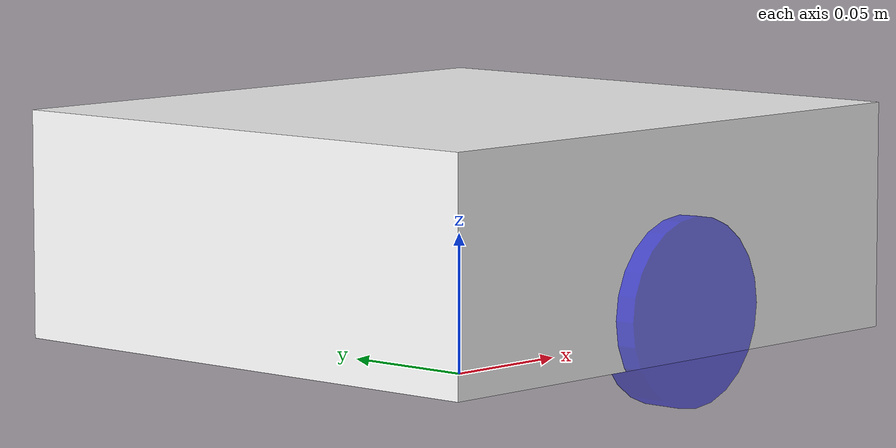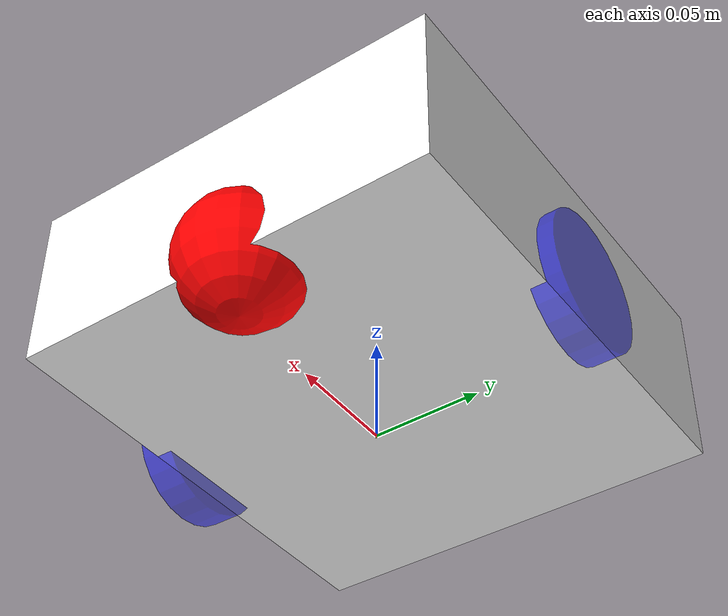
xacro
<robot name="body" xmlns:xacro="http://wiki.ros.org/xacro">
    <xacro:property name="footprint_radius" value="0.001"/>
    <xacro:property name="base_length" value="0.22"/>
    <xacro:property name="base_width" value="0.2"/>
    <xacro:property name="base_height" value="0.08"/>
    <xacro:property name="lidi" value="0.015"/>
    <xacro:property name="base_joint_z" value="${base_height/2 + lidi}"/>

    <link name="base_footprint">
        <visual>
            <geometry>
                <sphere radius="${footprint_radius}" />
            </geometry>
        </visual>
    </link>

    <link name="base_link">
        <visual>
            <geometry>
                <box size="${base_length} ${base_width} ${base_height}" />
            </geometry>
            <origin xyz="0 0 0" rpy="0 0 0" />
            <material name="white">
                <color rgba="1 1 1 1" />
            </material>
        </visual>

        <collision>
            <geometry>
                <box size ="${base_length} ${base_width} ${base_height}" />
            </geometry>
            <origin xyz="0 0 0" rpy="0 0 0" />
        </collision>
        <xacro:Box_inertial_matrix m="${2}" l="${base_length}" w="${base_width}" h="${base_height}" />
    </link>

    <gazebo reference="base_link">
        <material >
            Gazebo/White
        </material>
    </gazebo>

    <joint name="base_link2base_footprint" type="fixed">
        <parent link="base_footprint" />
        <child link="base_link"/>
        <origin xyz="0 0 ${base_joint_z}" />
    </joint>

    <xacro:property name="wheel_radius" value="0.0325"/>
    <xacro:property name="wheel_length" value="0.015"/>
    <xacro:property name="PI" value="3.1415927"/>
    <xacro:property name="wheel_joint_Z" value="${-base_height/2-lidi+wheel_radius}"/>

    <xacro:macro name="wheel_func" params="wheel_name flag">
        <link name="${wheel_name}_wheel">
            <visual>
                <geometry>
                    <cylinder radius="${wheel_radius}" length="${wheel_length}" />
                </geometry>
                <origin xyz="0 0 0" rpy="${PI/2} 0 0" />
                <material name="wheel_color">
                    <color rgba="0 0 1.0 0.5 0.3" />
                </material>
            </visual>
            <collision>
                <geometry>
                    <cylinder radius="${wheel_radius}" length="${wheel_length}" />
                </geometry>
                <origin xyz="0.0 0.0 0.0" rpy="${PI / 2} 0.0 0.0" />
            </collision>
            <xacro:cylinder_inertial_matrix m="${1}" r="${wheel_radius}" h="${wheel_length}" />
        </link>

        <joint name="base_link2_${wheel_name}" type="continuous">
            <parent link="base_link" />
            <child link="${wheel_name}_wheel"/>
            <origin xyz="0 ${0.1 * flag} ${wheel_joint_Z}" />
            <axis xyz="0 1 0" />
        </joint>

        <gazebo reference="${wheel_name}_wheel">
            <material >
                Gazebo/Black
            </material>
        </gazebo>
    </xacro:macro>

    <xacro:wheel_func wheel_name="left" flag="1" />
    <xacro:wheel_func wheel_name="right" flag="-1" />

    <xacro:property name="small_radius" value="0.03"/>
    <xacro:property name="small_jointz" value="${-base_height/2-lidi+small_radius}"/>

    <xacro:macro name="small_wheel_func" params="small_wheel_name flag">
        <link name="${small_wheel_name}_wheel">
            <visual>
                <geometry>
                    <sphere radius="${small_radius}" />
                </geometry>
                <origin xyz="0 0 0" rpy="0 0 0" />
                <material name="red">
                    <color rgba="1 0.0 0.0 1.0" />
                </material>
            </visual>
            <collision>
                <geometry>
                    <sphere radius="${small_radius}" />
                </geometry>
                <origin xyz="0 0 0" rpy="0 0 0" />
            </collision>
            <xacro:sphere_inertial_matrix m="${0.08}" r="${small_radius}" />
        </link>

        <joint name="${small_wheel_name}2base_link" type="continuous">
            <parent link="base_link" />
            <child link="${small_wheel_name}_wheel" />
            <origin xyz="${0.0925 * flag} 0 ${small_jointz}" />
            <axis xyz="1 1 1" />
        </joint>
        <gazebo reference="${small_wheel_name}_wheel">
            <material >
                Gazebo/Red
            </material>
        </gazebo>
    </xacro:macro>

    <xacro:small_wheel_func small_wheel_name="front" flag="1" />

</robot>
